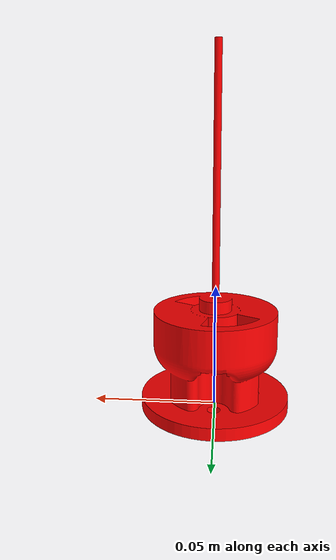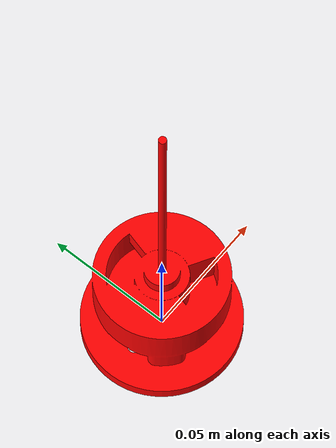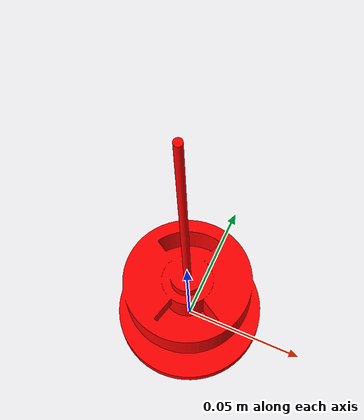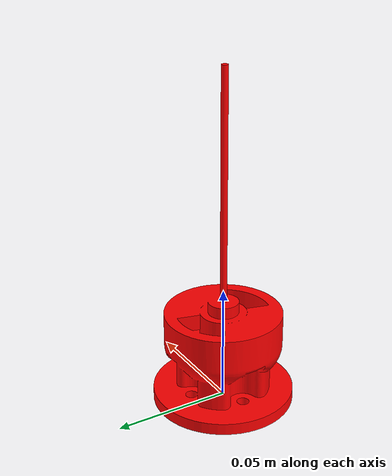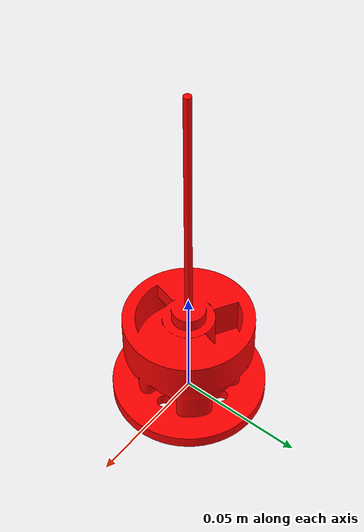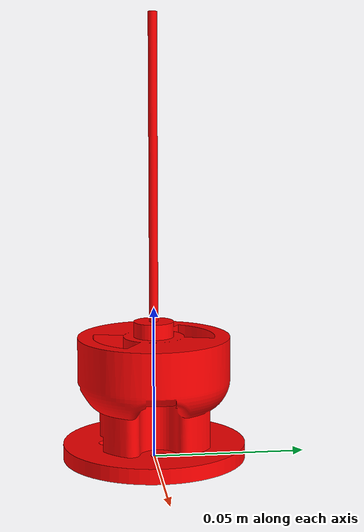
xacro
<?xml version="1.0"?>
<robot name="mesh">
  <link name="tool0">
    <visual>
      	<geometry>
          	<mesh filename="package://motoman_app/mesh/gp8_nozzle.STL"
                scale="0.001 0.001 0.001"/>
      	</geometry>
	  	<material name="ABS" >
          	<color rgba="1.0 0.0 0.0 1.0" />
         </material>
    	</visual>
  </link>
</robot>
